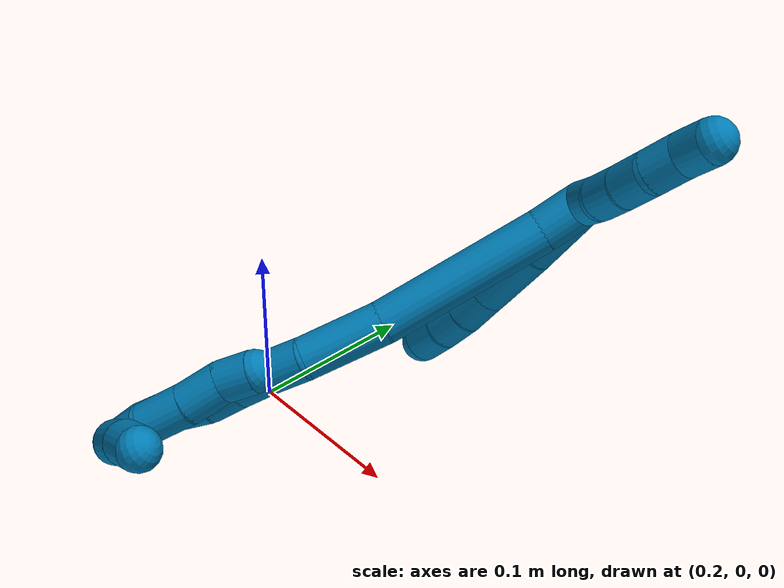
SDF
<sdf version="1.7">
 <world name="default">
  <model name="9">
   <static>0</static>
   <link name="9">
    <collision name="collision-cylinder-e_1_2_8">
     <pose>0.004621 0.003601 -0.020201 -2.96518 0.221525 -1.79804</pose>
     <geometry><cylinder><radius>0.0125</radius><length>0.042067</length></cylinder></geometry>
     <surface>
      <friction><ode><mu>1.16</mu><mu2>1.16</mu2><slip1>0</slip1><slip2>0</slip2></ode></friction>
      <contact><ode><kp>1e+06</kp><kd>1</kd><max_vel>0</max_vel><min_depth>0.001</min_depth></ode></contact>
     </surface>
    </collision>
    <visual name="visual-cylinder-e_1_2_8">
     <pose>0.004621 0.003601 -0.020201 -2.96518 0.221525 -1.79804</pose>
     <geometry><cylinder><radius>0.0125</radius><length>0.042067</length></cylinder></geometry>
     <material><ambient>0 0.490196 0.709804 1</ambient></material>
    </visual>
    <collision name="collision-cylinder-e_2_8_9">
     <pose>0.012714 0.012414 -0.061097 -2.8949 0.161223 -1.15505</pose>
     <geometry><cylinder><radius>0.0125</radius><length>0.043243</length></cylinder></geometry>
     <surface>
      <friction><ode><mu>1.16</mu><mu2>1.16</mu2><slip1>0</slip1><slip2>0</slip2></ode></friction>
      <contact><ode><kp>1e+06</kp><kd>1</kd><max_vel>0</max_vel><min_depth>0.001</min_depth></ode></contact>
     </surface>
    </collision>
    <visual name="visual-cylinder-e_2_8_9">
     <pose>0.012714 0.012414 -0.061097 -2.8949 0.161223 -1.15505</pose>
     <geometry><cylinder><radius>0.0125</radius><length>0.043243</length></cylinder></geometry>
     <material><ambient>0 0.490196 0.709804 1</ambient></material>
    </visual>
    <collision name="collision-cylinder-e_3_9_10">
     <pose>0.018074 0.020065 -0.092342 -2.9143 0.172736 -1.29792</pose>
     <geometry><cylinder><radius>0.0125</radius><length>0.021983</length></cylinder></geometry>
     <surface>
      <friction><ode><mu>1.16</mu><mu2>1.16</mu2><slip1>0</slip1><slip2>0</slip2></ode></friction>
      <contact><ode><kp>1e+06</kp><kd>1</kd><max_vel>0</max_vel><min_depth>0.001</min_depth></ode></contact>
     </surface>
    </collision>
    <visual name="visual-cylinder-e_3_9_10">
     <pose>0.018074 0.020065 -0.092342 -2.9143 0.172736 -1.29792</pose>
     <geometry><cylinder><radius>0.0125</radius><length>0.021983</length></cylinder></geometry>
     <material><ambient>0 0.490196 0.709804 1</ambient></material>
    </visual>
    <collision name="collision-cylinder-e_4_10_11">
     <pose>0.020679 0.025127 -0.113028 -2.88845 0.068282 -0.524445</pose>
     <geometry><cylinder><radius>0.0125</radius><length>0.020989</length></cylinder></geometry>
     <surface>
      <friction><ode><mu>1.16</mu><mu2>1.16</mu2><slip1>0</slip1><slip2>0</slip2></ode></friction>
      <contact><ode><kp>1e+06</kp><kd>1</kd><max_vel>0</max_vel><min_depth>0.001</min_depth></ode></contact>
     </surface>
    </collision>
    <visual name="visual-cylinder-e_4_10_11">
     <pose>0.020679 0.025127 -0.113028 -2.88845 0.068282 -0.524445</pose>
     <geometry><cylinder><radius>0.0125</radius><length>0.020989</length></cylinder></geometry>
     <material><ambient>0 0.490196 0.709804 1</ambient></material>
    </visual>
    <collision name="collision-cylinder-e_5_11_6">
     <pose>0.021361 0.031259 -0.13344 -2.81245 -0.00315 0.018969</pose>
     <geometry><cylinder><radius>0.0125</radius><length>0.021718</length></cylinder></geometry>
     <surface>
      <friction><ode><mu>1.16</mu><mu2>1.16</mu2><slip1>0</slip1><slip2>0</slip2></ode></friction>
      <contact><ode><kp>1e+06</kp><kd>1</kd><max_vel>0</max_vel><min_depth>0.001</min_depth></ode></contact>
     </surface>
    </collision>
    <visual name="visual-cylinder-e_5_11_6">
     <pose>0.021361 0.031259 -0.13344 -2.81245 -0.00315 0.018969</pose>
     <geometry><cylinder><radius>0.0125</radius><length>0.021718</length></cylinder></geometry>
     <material><ambient>0 0.490196 0.709804 1</ambient></material>
    </visual>
    <collision name="collision-cylinder-e_1_2_12">
     <pose>0.002489 -0.005866 0.007707 0.650536 0.251551 0.085233</pose>
     <geometry><cylinder><radius>0.0125</radius><length>0.02</length></cylinder></geometry>
     <surface>
      <friction><ode><mu>1.16</mu><mu2>1.16</mu2><slip1>0</slip1><slip2>0</slip2></ode></friction>
      <contact><ode><kp>1e+06</kp><kd>1</kd><max_vel>0</max_vel><min_depth>0.001</min_depth></ode></contact>
     </surface>
    </collision>
    <visual name="visual-cylinder-e_1_2_12">
     <pose>0.002489 -0.005866 0.007707 0.650536 0.251551 0.085233</pose>
     <geometry><cylinder><radius>0.0125</radius><length>0.02</length></cylinder></geometry>
     <material><ambient>0 0.490196 0.709804 1</ambient></material>
    </visual>
    <collision name="collision-cylinder-e_2_12_13">
     <pose>0.006305 -0.015936 0.02439 0.438164 0.133091 0.029675</pose>
     <geometry><cylinder><radius>0.0125</radius><length>0.02</length></cylinder></geometry>
     <surface>
      <friction><ode><mu>1.16</mu><mu2>1.16</mu2><slip1>0</slip1><slip2>0</slip2></ode></friction>
      <contact><ode><kp>1e+06</kp><kd>1</kd><max_vel>0</max_vel><min_depth>0.001</min_depth></ode></contact>
     </surface>
    </collision>
    <visual name="visual-cylinder-e_2_12_13">
     <pose>0.006305 -0.015936 0.02439 0.438164 0.133091 0.029675</pose>
     <geometry><cylinder><radius>0.0125</radius><length>0.02</length></cylinder></geometry>
     <material><ambient>0 0.490196 0.709804 1</ambient></material>
    </visual>
    <collision name="collision-cylinder-e_3_13_14">
     <pose>0.008471 -0.023511 0.042743 0.344949 0.083948 0.014632</pose>
     <geometry><cylinder><radius>0.0125</radius><length>0.02</length></cylinder></geometry>
     <surface>
      <friction><ode><mu>1.16</mu><mu2>1.16</mu2><slip1>0</slip1><slip2>0</slip2></ode></friction>
      <contact><ode><kp>1e+06</kp><kd>1</kd><max_vel>0</max_vel><min_depth>0.001</min_depth></ode></contact>
     </surface>
    </collision>
    <visual name="visual-cylinder-e_3_13_14">
     <pose>0.008471 -0.023511 0.042743 0.344949 0.083948 0.014632</pose>
     <geometry><cylinder><radius>0.0125</radius><length>0.02</length></cylinder></geometry>
     <material><ambient>0 0.490196 0.709804 1</ambient></material>
    </visual>
    <collision name="collision-cylinder-e_4_14_15">
     <pose>0.009319 -0.027646 0.062091 0.076638 0.001029 3.9e-05</pose>
     <geometry><cylinder><radius>0.0125</radius><length>0.02</length></cylinder></geometry>
     <surface>
      <friction><ode><mu>1.16</mu><mu2>1.16</mu2><slip1>0</slip1><slip2>0</slip2></ode></friction>
      <contact><ode><kp>1e+06</kp><kd>1</kd><max_vel>0</max_vel><min_depth>0.001</min_depth></ode></contact>
     </surface>
    </collision>
    <visual name="visual-cylinder-e_4_14_15">
     <pose>0.009319 -0.027646 0.062091 0.076638 0.001029 3.9e-05</pose>
     <geometry><cylinder><radius>0.0125</radius><length>0.02</length></cylinder></geometry>
     <material><ambient>0 0.490196 0.709804 1</ambient></material>
    </visual>
    <collision name="collision-cylinder-e_5_15_5">
     <pose>0.010635 -0.031784 0.081385 0.346984 0.130928 0.022977</pose>
     <geometry><cylinder><radius>0.0125</radius><length>0.02</length></cylinder></geometry>
     <surface>
      <friction><ode><mu>1.16</mu><mu2>1.16</mu2><slip1>0</slip1><slip2>0</slip2></ode></friction>
      <contact><ode><kp>1e+06</kp><kd>1</kd><max_vel>0</max_vel><min_depth>0.001</min_depth></ode></contact>
     </surface>
    </collision>
    <visual name="visual-cylinder-e_5_15_5">
     <pose>0.010635 -0.031784 0.081385 0.346984 0.130928 0.022977</pose>
     <geometry><cylinder><radius>0.0125</radius><length>0.02</length></cylinder></geometry>
     <material><ambient>0 0.490196 0.709804 1</ambient></material>
    </visual>
    <collision name="collision-cylinder-e_1_2_16">
     <pose>0.002739 -0.004492 -0.011982 2.7829 0.210865 1.05674</pose>
     <geometry><cylinder><radius>0.0125</radius><length>0.026172</length></cylinder></geometry>
     <surface>
      <friction><ode><mu>1.16</mu><mu2>1.16</mu2><slip1>0</slip1><slip2>0</slip2></ode></friction>
      <contact><ode><kp>1e+06</kp><kd>1</kd><max_vel>0</max_vel><min_depth>0.001</min_depth></ode></contact>
     </surface>
    </collision>
    <visual name="visual-cylinder-e_1_2_16">
     <pose>0.002739 -0.004492 -0.011982 2.7829 0.210865 1.05674</pose>
     <geometry><cylinder><radius>0.0125</radius><length>0.026172</length></cylinder></geometry>
     <material><ambient>0 0.490196 0.709804 1</ambient></material>
    </visual>
    <collision name="collision-cylinder-e_2_16_17">
     <pose>0.014209 -0.030509 -0.067683 2.68408 0.177295 0.729334</pose>
     <geometry><cylinder><radius>0.0125</radius><length>0.099015</length></cylinder></geometry>
     <surface>
      <friction><ode><mu>1.16</mu><mu2>1.16</mu2><slip1>0</slip1><slip2>0</slip2></ode></friction>
      <contact><ode><kp>1e+06</kp><kd>1</kd><max_vel>0</max_vel><min_depth>0.001</min_depth></ode></contact>
     </surface>
    </collision>
    <visual name="visual-cylinder-e_2_16_17">
     <pose>0.014209 -0.030509 -0.067683 2.68408 0.177295 0.729334</pose>
     <geometry><cylinder><radius>0.0125</radius><length>0.099015</length></cylinder></geometry>
     <material><ambient>0 0.490196 0.709804 1</ambient></material>
    </visual>
    <collision name="collision-cylinder-e_3_17_18">
     <pose>0.024977 -0.062929 -0.132326 2.66153 0.086083 0.348368</pose>
     <geometry><cylinder><radius>0.0125</radius><length>0.047355</length></cylinder></geometry>
     <surface>
      <friction><ode><mu>1.16</mu><mu2>1.16</mu2><slip1>0</slip1><slip2>0</slip2></ode></friction>
      <contact><ode><kp>1e+06</kp><kd>1</kd><max_vel>0</max_vel><min_depth>0.001</min_depth></ode></contact>
     </surface>
    </collision>
    <visual name="visual-cylinder-e_3_17_18">
     <pose>0.024977 -0.062929 -0.132326 2.66153 0.086083 0.348368</pose>
     <geometry><cylinder><radius>0.0125</radius><length>0.047355</length></cylinder></geometry>
     <material><ambient>0 0.490196 0.709804 1</ambient></material>
    </visual>
    <collision name="collision-cylinder-e_4_18_19">
     <pose>0.026683 -0.076478 -0.164471 2.90934 -0.028553 -0.243578</pose>
     <geometry><cylinder><radius>0.0125</radius><length>0.023071</length></cylinder></geometry>
     <surface>
      <friction><ode><mu>1.16</mu><mu2>1.16</mu2><slip1>0</slip1><slip2>0</slip2></ode></friction>
      <contact><ode><kp>1e+06</kp><kd>1</kd><max_vel>0</max_vel><min_depth>0.001</min_depth></ode></contact>
     </surface>
    </collision>
    <visual name="visual-cylinder-e_4_18_19">
     <pose>0.026683 -0.076478 -0.164471 2.90934 -0.028553 -0.243578</pose>
     <geometry><cylinder><radius>0.0125</radius><length>0.023071</length></cylinder></geometry>
     <material><ambient>0 0.490196 0.709804 1</ambient></material>
    </visual>
    <collision name="collision-cylinder-e_5_19_20">
     <pose>0.02638 -0.080359 -0.185982 3.02293 0.002556 0.043018</pose>
     <geometry><cylinder><radius>0.0125</radius><length>0.020726</length></cylinder></geometry>
     <surface>
      <friction><ode><mu>1.16</mu><mu2>1.16</mu2><slip1>0</slip1><slip2>0</slip2></ode></friction>
      <contact><ode><kp>1e+06</kp><kd>1</kd><max_vel>0</max_vel><min_depth>0.001</min_depth></ode></contact>
     </surface>
    </collision>
    <visual name="visual-cylinder-e_5_19_20">
     <pose>0.02638 -0.080359 -0.185982 3.02293 0.002556 0.043018</pose>
     <geometry><cylinder><radius>0.0125</radius><length>0.020726</length></cylinder></geometry>
     <material><ambient>0 0.490196 0.709804 1</ambient></material>
    </visual>
    <collision name="collision-cylinder-e_6_20_21">
     <pose>0.026834 -0.083345 -0.206906 2.97761 0.039596 0.472893</pose>
     <geometry><cylinder><radius>0.0125</radius><length>0.021574</length></cylinder></geometry>
     <surface>
      <friction><ode><mu>1.16</mu><mu2>1.16</mu2><slip1>0</slip1><slip2>0</slip2></ode></friction>
      <contact><ode><kp>1e+06</kp><kd>1</kd><max_vel>0</max_vel><min_depth>0.001</min_depth></ode></contact>
     </surface>
    </collision>
    <visual name="visual-cylinder-e_6_20_21">
     <pose>0.026834 -0.083345 -0.206906 2.97761 0.039596 0.472893</pose>
     <geometry><cylinder><radius>0.0125</radius><length>0.021574</length></cylinder></geometry>
     <material><ambient>0 0.490196 0.709804 1</ambient></material>
    </visual>
    <collision name="collision-cylinder-e_7_21_22">
     <pose>0.025763 -0.08839 -0.227141 2.81184 -0.146538 -0.830937</pose>
     <geometry><cylinder><radius>0.0125</radius><length>0.020514</length></cylinder></geometry>
     <surface>
      <friction><ode><mu>1.16</mu><mu2>1.16</mu2><slip1>0</slip1><slip2>0</slip2></ode></friction>
      <contact><ode><kp>1e+06</kp><kd>1</kd><max_vel>0</max_vel><min_depth>0.001</min_depth></ode></contact>
     </surface>
    </collision>
    <visual name="visual-cylinder-e_7_21_22">
     <pose>0.025763 -0.08839 -0.227141 2.81184 -0.146538 -0.830937</pose>
     <geometry><cylinder><radius>0.0125</radius><length>0.020514</length></cylinder></geometry>
     <material><ambient>0 0.490196 0.709804 1</ambient></material>
    </visual>
    <collision name="collision-cylinder-e_8_22_23">
     <pose>0.024425 -0.094626 -0.247003 2.86164 0.014978 0.106203</pose>
     <geometry><cylinder><radius>0.0125</radius><length>0.021357</length></cylinder></geometry>
     <surface>
      <friction><ode><mu>1.16</mu><mu2>1.16</mu2><slip1>0</slip1><slip2>0</slip2></ode></friction>
      <contact><ode><kp>1e+06</kp><kd>1</kd><max_vel>0</max_vel><min_depth>0.001</min_depth></ode></contact>
     </surface>
    </collision>
    <visual name="visual-cylinder-e_8_22_23">
     <pose>0.024425 -0.094626 -0.247003 2.86164 0.014978 0.106203</pose>
     <geometry><cylinder><radius>0.0125</radius><length>0.021357</length></cylinder></geometry>
     <material><ambient>0 0.490196 0.709804 1</ambient></material>
    </visual>
    <collision name="collision-cylinder-e_9_23_1">
     <pose>0.027319 -0.101448 -0.266192 2.73243 0.273837 1.17237</pose>
     <geometry><cylinder><radius>0.0125</radius><length>0.020216</length></cylinder></geometry>
     <surface>
      <friction><ode><mu>1.16</mu><mu2>1.16</mu2><slip1>0</slip1><slip2>0</slip2></ode></friction>
      <contact><ode><kp>1e+06</kp><kd>1</kd><max_vel>0</max_vel><min_depth>0.001</min_depth></ode></contact>
     </surface>
    </collision>
    <visual name="visual-cylinder-e_9_23_1">
     <pose>0.027319 -0.101448 -0.266192 2.73243 0.273837 1.17237</pose>
     <geometry><cylinder><radius>0.0125</radius><length>0.020216</length></cylinder></geometry>
     <material><ambient>0 0.490196 0.709804 1</ambient></material>
    </visual>
    <collision name="collision-cylinder-e_1_1_24">
     <pose>0.029017 -0.105698 -0.26175 0.028319 -0.077263 -0.001095</pose>
     <geometry><cylinder><radius>0.0125</radius><length>0.026831</length></cylinder></geometry>
     <surface>
      <friction><ode><mu>1.16</mu><mu2>1.16</mu2><slip1>0</slip1><slip2>0</slip2></ode></friction>
      <contact><ode><kp>1e+06</kp><kd>1</kd><max_vel>0</max_vel><min_depth>0.001</min_depth></ode></contact>
     </surface>
    </collision>
    <visual name="visual-cylinder-e_1_1_24">
     <pose>0.029017 -0.105698 -0.26175 0.028319 -0.077263 -0.001095</pose>
     <geometry><cylinder><radius>0.0125</radius><length>0.026831</length></cylinder></geometry>
     <material><ambient>0 0.490196 0.709804 1</ambient></material>
    </visual>
    <collision name="collision-cylinder-e_2_24_25">
     <pose>0.027166 -0.10238 -0.23514 -0.27229 -0.059222 0.008115</pose>
     <geometry><cylinder><radius>0.0125</radius><length>0.027541</length></cylinder></geometry>
     <surface>
      <friction><ode><mu>1.16</mu><mu2>1.16</mu2><slip1>0</slip1><slip2>0</slip2></ode></friction>
      <contact><ode><kp>1e+06</kp><kd>1</kd><max_vel>0</max_vel><min_depth>0.001</min_depth></ode></contact>
     </surface>
    </collision>
    <visual name="visual-cylinder-e_2_24_25">
     <pose>0.027166 -0.10238 -0.23514 -0.27229 -0.059222 0.008115</pose>
     <geometry><cylinder><radius>0.0125</radius><length>0.027541</length></cylinder></geometry>
     <material><ambient>0 0.490196 0.709804 1</ambient></material>
    </visual>
    <collision name="collision-cylinder-e_3_25_26">
     <pose>0.02443 -0.09511 -0.21003 -0.29242 -0.153725 0.022681</pose>
     <geometry><cylinder><radius>0.0125</radius><length>0.025089</length></cylinder></geometry>
     <surface>
      <friction><ode><mu>1.16</mu><mu2>1.16</mu2><slip1>0</slip1><slip2>0</slip2></ode></friction>
      <contact><ode><kp>1e+06</kp><kd>1</kd><max_vel>0</max_vel><min_depth>0.001</min_depth></ode></contact>
     </surface>
    </collision>
    <visual name="visual-cylinder-e_3_25_26">
     <pose>0.02443 -0.09511 -0.21003 -0.29242 -0.153725 0.022681</pose>
     <geometry><cylinder><radius>0.0125</radius><length>0.025089</length></cylinder></geometry>
     <material><ambient>0 0.490196 0.709804 1</ambient></material>
    </visual>
    <collision name="collision-cylinder-e_4_26_4">
     <pose>0.023433 -0.089289 -0.188181 -0.22148 0.090033 -0.010018</pose>
     <geometry><cylinder><radius>0.0125</radius><length>0.020538</length></cylinder></geometry>
     <surface>
      <friction><ode><mu>1.16</mu><mu2>1.16</mu2><slip1>0</slip1><slip2>0</slip2></ode></friction>
      <contact><ode><kp>1e+06</kp><kd>1</kd><max_vel>0</max_vel><min_depth>0.001</min_depth></ode></contact>
     </surface>
    </collision>
    <visual name="visual-cylinder-e_4_26_4">
     <pose>0.023433 -0.089289 -0.188181 -0.22148 0.090033 -0.010018</pose>
     <geometry><cylinder><radius>0.0125</radius><length>0.020538</length></cylinder></geometry>
     <material><ambient>0 0.490196 0.709804 1</ambient></material>
    </visual>
    <collision name="collision-cylinder-e_1_1_27">
     <pose>0.035419 -0.125949 -0.255117 0.800803 0.184632 0.078331</pose>
     <geometry><cylinder><radius>0.0125</radius><length>0.058465</length></cylinder></geometry>
     <surface>
      <friction><ode><mu>1.16</mu><mu2>1.16</mu2><slip1>0</slip1><slip2>0</slip2></ode></friction>
      <contact><ode><kp>1e+06</kp><kd>1</kd><max_vel>0</max_vel><min_depth>0.001</min_depth></ode></contact>
     </surface>
    </collision>
    <visual name="visual-cylinder-e_1_1_27">
     <pose>0.035419 -0.125949 -0.255117 0.800803 0.184632 0.078331</pose>
     <geometry><cylinder><radius>0.0125</radius><length>0.058465</length></cylinder></geometry>
     <material><ambient>0 0.490196 0.709804 1</ambient></material>
    </visual>
    <collision name="collision-cylinder-e_2_27_28">
     <pose>0.043602 -0.152117 -0.226684 0.581258 0.272327 0.081914</pose>
     <geometry><cylinder><radius>0.0125</radius><length>0.020942</length></cylinder></geometry>
     <surface>
      <friction><ode><mu>1.16</mu><mu2>1.16</mu2><slip1>0</slip1><slip2>0</slip2></ode></friction>
      <contact><ode><kp>1e+06</kp><kd>1</kd><max_vel>0</max_vel><min_depth>0.001</min_depth></ode></contact>
     </surface>
    </collision>
    <visual name="visual-cylinder-e_2_27_28">
     <pose>0.043602 -0.152117 -0.226684 0.581258 0.272327 0.081914</pose>
     <geometry><cylinder><radius>0.0125</radius><length>0.020942</length></cylinder></geometry>
     <material><ambient>0 0.490196 0.709804 1</ambient></material>
    </visual>
    <collision name="collision-cylinder-e_3_28_3">
     <pose>0.050762 -0.162336 -0.210179 0.52536 0.435515 0.118854</pose>
     <geometry><cylinder><radius>0.0125</radius><length>0.020593</length></cylinder></geometry>
     <surface>
      <friction><ode><mu>1.16</mu><mu2>1.16</mu2><slip1>0</slip1><slip2>0</slip2></ode></friction>
      <contact><ode><kp>1e+06</kp><kd>1</kd><max_vel>0</max_vel><min_depth>0.001</min_depth></ode></contact>
     </surface>
    </collision>
    <visual name="visual-cylinder-e_3_28_3">
     <pose>0.050762 -0.162336 -0.210179 0.52536 0.435515 0.118854</pose>
     <geometry><cylinder><radius>0.0125</radius><length>0.020593</length></cylinder></geometry>
     <material><ambient>0 0.490196 0.709804 1</ambient></material>
    </visual>
    <collision name="collision-sphere-3">
     <pose>0.055106 -0.167018 -0.202102 0 -0 0</pose>
     <geometry><sphere><radius>0.0125</radius></sphere></geometry>
     <surface>
      <friction><ode><mu>1.16</mu><mu2>1.16</mu2><slip1>0</slip1><slip2>0</slip2></ode></friction>
      <contact><ode><kp>1e+06</kp><kd>1</kd><max_vel>0</max_vel><min_depth>0.001</min_depth></ode></contact>
     </surface>
    </collision>
    <visual name="visual-sphere-3">
     <pose>0.055106 -0.167018 -0.202102 0 -0 0</pose>
     <geometry><sphere><radius>0.0125</radius></sphere></geometry>
     <material><ambient>0 0.490196 0.709804 1</ambient></material>
    </visual>
    <collision name="collision-sphere-28">
     <pose>0.046418 -0.157654 -0.218255 0 -0 0</pose>
     <geometry><sphere><radius>0.0125</radius></sphere></geometry>
     <surface>
      <friction><ode><mu>1.16</mu><mu2>1.16</mu2><slip1>0</slip1><slip2>0</slip2></ode></friction>
      <contact><ode><kp>1e+06</kp><kd>1</kd><max_vel>0</max_vel><min_depth>0.001</min_depth></ode></contact>
     </surface>
    </collision>
    <visual name="visual-sphere-28">
     <pose>0.046418 -0.157654 -0.218255 0 -0 0</pose>
     <geometry><sphere><radius>0.0125</radius></sphere></geometry>
     <material><ambient>0 0.490196 0.709804 1</ambient></material>
    </visual>
    <collision name="collision-sphere-27">
     <pose>0.040786 -0.146579 -0.235113 0 -0 0</pose>
     <geometry><sphere><radius>0.0125</radius></sphere></geometry>
     <surface>
      <friction><ode><mu>1.16</mu><mu2>1.16</mu2><slip1>0</slip1><slip2>0</slip2></ode></friction>
      <contact><ode><kp>1e+06</kp><kd>1</kd><max_vel>0</max_vel><min_depth>0.001</min_depth></ode></contact>
     </surface>
    </collision>
    <visual name="visual-sphere-27">
     <pose>0.040786 -0.146579 -0.235113 0 -0 0</pose>
     <geometry><sphere><radius>0.0125</radius></sphere></geometry>
     <material><ambient>0 0.490196 0.709804 1</ambient></material>
    </visual>
    <collision name="collision-sphere-4">
     <pose>0.024356 -0.087043 -0.178204 0 -0 0</pose>
     <geometry><sphere><radius>0.0125</radius></sphere></geometry>
     <surface>
      <friction><ode><mu>1.16</mu><mu2>1.16</mu2><slip1>0</slip1><slip2>0</slip2></ode></friction>
      <contact><ode><kp>1e+06</kp><kd>1</kd><max_vel>0</max_vel><min_depth>0.001</min_depth></ode></contact>
     </surface>
    </collision>
    <visual name="visual-sphere-4">
     <pose>0.024356 -0.087043 -0.178204 0 -0 0</pose>
     <geometry><sphere><radius>0.0125</radius></sphere></geometry>
     <material><ambient>0 0.490196 0.709804 1</ambient></material>
    </visual>
    <collision name="collision-sphere-26">
     <pose>0.022509 -0.091536 -0.198159 0 -0 0</pose>
     <geometry><sphere><radius>0.0125</radius></sphere></geometry>
     <surface>
      <friction><ode><mu>1.16</mu><mu2>1.16</mu2><slip1>0</slip1><slip2>0</slip2></ode></friction>
      <contact><ode><kp>1e+06</kp><kd>1</kd><max_vel>0</max_vel><min_depth>0.001</min_depth></ode></contact>
     </surface>
    </collision>
    <visual name="visual-sphere-26">
     <pose>0.022509 -0.091536 -0.198159 0 -0 0</pose>
     <geometry><sphere><radius>0.0125</radius></sphere></geometry>
     <material><ambient>0 0.490196 0.709804 1</ambient></material>
    </visual>
    <collision name="collision-sphere-25">
     <pose>0.026351 -0.098683 -0.2219 0 -0 0</pose>
     <geometry><sphere><radius>0.0125</radius></sphere></geometry>
     <surface>
      <friction><ode><mu>1.16</mu><mu2>1.16</mu2><slip1>0</slip1><slip2>0</slip2></ode></friction>
      <contact><ode><kp>1e+06</kp><kd>1</kd><max_vel>0</max_vel><min_depth>0.001</min_depth></ode></contact>
     </surface>
    </collision>
    <visual name="visual-sphere-25">
     <pose>0.026351 -0.098683 -0.2219 0 -0 0</pose>
     <geometry><sphere><radius>0.0125</radius></sphere></geometry>
     <material><ambient>0 0.490196 0.709804 1</ambient></material>
    </visual>
    <collision name="collision-sphere-24">
     <pose>0.027981 -0.106077 -0.24838 0 -0 0</pose>
     <geometry><sphere><radius>0.0125</radius></sphere></geometry>
     <surface>
      <friction><ode><mu>1.16</mu><mu2>1.16</mu2><slip1>0</slip1><slip2>0</slip2></ode></friction>
      <contact><ode><kp>1e+06</kp><kd>1</kd><max_vel>0</max_vel><min_depth>0.001</min_depth></ode></contact>
     </surface>
    </collision>
    <visual name="visual-sphere-24">
     <pose>0.027981 -0.106077 -0.24838 0 -0 0</pose>
     <geometry><sphere><radius>0.0125</radius></sphere></geometry>
     <material><ambient>0 0.490196 0.709804 1</ambient></material>
    </visual>
    <collision name="collision-sphere-1">
     <pose>0.030052 -0.10532 -0.27512 0 -0 0</pose>
     <geometry><sphere><radius>0.0125</radius></sphere></geometry>
     <surface>
      <friction><ode><mu>1.16</mu><mu2>1.16</mu2><slip1>0</slip1><slip2>0</slip2></ode></friction>
      <contact><ode><kp>1e+06</kp><kd>1</kd><max_vel>0</max_vel><min_depth>0.001</min_depth></ode></contact>
     </surface>
    </collision>
    <visual name="visual-sphere-1">
     <pose>0.030052 -0.10532 -0.27512 0 -0 0</pose>
     <geometry><sphere><radius>0.0125</radius></sphere></geometry>
     <material><ambient>0 0.490196 0.709804 1</ambient></material>
    </visual>
    <collision name="collision-sphere-23">
     <pose>0.024585 -0.097577 -0.257264 0 -0 0</pose>
     <geometry><sphere><radius>0.0125</radius></sphere></geometry>
     <surface>
      <friction><ode><mu>1.16</mu><mu2>1.16</mu2><slip1>0</slip1><slip2>0</slip2></ode></friction>
      <contact><ode><kp>1e+06</kp><kd>1</kd><max_vel>0</max_vel><min_depth>0.001</min_depth></ode></contact>
     </surface>
    </collision>
    <visual name="visual-sphere-23">
     <pose>0.024585 -0.097577 -0.257264 0 -0 0</pose>
     <geometry><sphere><radius>0.0125</radius></sphere></geometry>
     <material><ambient>0 0.490196 0.709804 1</ambient></material>
    </visual>
    <collision name="collision-sphere-22">
     <pose>0.024265 -0.091676 -0.236741 0 -0 0</pose>
     <geometry><sphere><radius>0.0125</radius></sphere></geometry>
     <surface>
      <friction><ode><mu>1.16</mu><mu2>1.16</mu2><slip1>0</slip1><slip2>0</slip2></ode></friction>
      <contact><ode><kp>1e+06</kp><kd>1</kd><max_vel>0</max_vel><min_depth>0.001</min_depth></ode></contact>
     </surface>
    </collision>
    <visual name="visual-sphere-22">
     <pose>0.024265 -0.091676 -0.236741 0 -0 0</pose>
     <geometry><sphere><radius>0.0125</radius></sphere></geometry>
     <material><ambient>0 0.490196 0.709804 1</ambient></material>
    </visual>
    <collision name="collision-sphere-21">
     <pose>0.027261 -0.085105 -0.21754 0 -0 0</pose>
     <geometry><sphere><radius>0.0125</radius></sphere></geometry>
     <surface>
      <friction><ode><mu>1.16</mu><mu2>1.16</mu2><slip1>0</slip1><slip2>0</slip2></ode></friction>
      <contact><ode><kp>1e+06</kp><kd>1</kd><max_vel>0</max_vel><min_depth>0.001</min_depth></ode></contact>
     </surface>
    </collision>
    <visual name="visual-sphere-21">
     <pose>0.027261 -0.085105 -0.21754 0 -0 0</pose>
     <geometry><sphere><radius>0.0125</radius></sphere></geometry>
     <material><ambient>0 0.490196 0.709804 1</ambient></material>
    </visual>
    <collision name="collision-sphere-6">
     <pose>0.021327 0.034769 -0.143716 0 -0 0</pose>
     <geometry><sphere><radius>0.0125</radius></sphere></geometry>
     <surface>
      <friction><ode><mu>1.16</mu><mu2>1.16</mu2><slip1>0</slip1><slip2>0</slip2></ode></friction>
      <contact><ode><kp>1e+06</kp><kd>1</kd><max_vel>0</max_vel><min_depth>0.001</min_depth></ode></contact>
     </surface>
    </collision>
    <visual name="visual-sphere-6">
     <pose>0.021327 0.034769 -0.143716 0 -0 0</pose>
     <geometry><sphere><radius>0.0125</radius></sphere></geometry>
     <material><ambient>0 0.490196 0.709804 1</ambient></material>
    </visual>
    <collision name="collision-sphere-11">
     <pose>0.021395 0.027749 -0.123164 0 -0 0</pose>
     <geometry><sphere><radius>0.0125</radius></sphere></geometry>
     <surface>
      <friction><ode><mu>1.16</mu><mu2>1.16</mu2><slip1>0</slip1><slip2>0</slip2></ode></friction>
      <contact><ode><kp>1e+06</kp><kd>1</kd><max_vel>0</max_vel><min_depth>0.001</min_depth></ode></contact>
     </surface>
    </collision>
    <visual name="visual-sphere-11">
     <pose>0.021395 0.027749 -0.123164 0 -0 0</pose>
     <geometry><sphere><radius>0.0125</radius></sphere></geometry>
     <material><ambient>0 0.490196 0.709804 1</ambient></material>
    </visual>
    <collision name="collision-sphere-10">
     <pose>0.019963 0.022505 -0.102891 0 -0 0</pose>
     <geometry><sphere><radius>0.0125</radius></sphere></geometry>
     <surface>
      <friction><ode><mu>1.16</mu><mu2>1.16</mu2><slip1>0</slip1><slip2>0</slip2></ode></friction>
      <contact><ode><kp>1e+06</kp><kd>1</kd><max_vel>0</max_vel><min_depth>0.001</min_depth></ode></contact>
     </surface>
    </collision>
    <visual name="visual-sphere-10">
     <pose>0.019963 0.022505 -0.102891 0 -0 0</pose>
     <geometry><sphere><radius>0.0125</radius></sphere></geometry>
     <material><ambient>0 0.490196 0.709804 1</ambient></material>
    </visual>
    <collision name="collision-sphere-9">
     <pose>0.016184 0.017625 -0.081792 0 -0 0</pose>
     <geometry><sphere><radius>0.0125</radius></sphere></geometry>
     <surface>
      <friction><ode><mu>1.16</mu><mu2>1.16</mu2><slip1>0</slip1><slip2>0</slip2></ode></friction>
      <contact><ode><kp>1e+06</kp><kd>1</kd><max_vel>0</max_vel><min_depth>0.001</min_depth></ode></contact>
     </surface>
    </collision>
    <visual name="visual-sphere-9">
     <pose>0.016184 0.017625 -0.081792 0 -0 0</pose>
     <geometry><sphere><radius>0.0125</radius></sphere></geometry>
     <material><ambient>0 0.490196 0.709804 1</ambient></material>
    </visual>
    <collision name="collision-sphere-2">
     <geometry><sphere><radius>0.0125</radius></sphere></geometry>
     <surface>
      <friction><ode><mu>1.16</mu><mu2>1.16</mu2><slip1>0</slip1><slip2>0</slip2></ode></friction>
      <contact><ode><kp>1e+06</kp><kd>1</kd><max_vel>0</max_vel><min_depth>0.001</min_depth></ode></contact>
     </surface>
    </collision>
    <visual name="visual-sphere-2">
     <geometry><sphere><radius>0.0125</radius></sphere></geometry>
     <material><ambient>0 0.490196 0.709804 1</ambient></material>
    </visual>
    <collision name="collision-sphere-19">
     <pose>0.026354 -0.079132 -0.175692 0 -0 0</pose>
     <geometry><sphere><radius>0.0125</radius></sphere></geometry>
     <surface>
      <friction><ode><mu>1.16</mu><mu2>1.16</mu2><slip1>0</slip1><slip2>0</slip2></ode></friction>
      <contact><ode><kp>1e+06</kp><kd>1</kd><max_vel>0</max_vel><min_depth>0.001</min_depth></ode></contact>
     </surface>
    </collision>
    <visual name="visual-sphere-19">
     <pose>0.026354 -0.079132 -0.175692 0 -0 0</pose>
     <geometry><sphere><radius>0.0125</radius></sphere></geometry>
     <material><ambient>0 0.490196 0.709804 1</ambient></material>
    </visual>
    <collision name="collision-sphere-8">
     <pose>0.009243 0.007202 -0.040402 0 -0 0</pose>
     <geometry><sphere><radius>0.0125</radius></sphere></geometry>
     <surface>
      <friction><ode><mu>1.16</mu><mu2>1.16</mu2><slip1>0</slip1><slip2>0</slip2></ode></friction>
      <contact><ode><kp>1e+06</kp><kd>1</kd><max_vel>0</max_vel><min_depth>0.001</min_depth></ode></contact>
     </surface>
    </collision>
    <visual name="visual-sphere-8">
     <pose>0.009243 0.007202 -0.040402 0 -0 0</pose>
     <geometry><sphere><radius>0.0125</radius></sphere></geometry>
     <material><ambient>0 0.490196 0.709804 1</ambient></material>
    </visual>
    <collision name="collision-sphere-12">
     <pose>0.004978 -0.011731 0.015414 0 -0 0</pose>
     <geometry><sphere><radius>0.0125</radius></sphere></geometry>
     <surface>
      <friction><ode><mu>1.16</mu><mu2>1.16</mu2><slip1>0</slip1><slip2>0</slip2></ode></friction>
      <contact><ode><kp>1e+06</kp><kd>1</kd><max_vel>0</max_vel><min_depth>0.001</min_depth></ode></contact>
     </surface>
    </collision>
    <visual name="visual-sphere-12">
     <pose>0.004978 -0.011731 0.015414 0 -0 0</pose>
     <geometry><sphere><radius>0.0125</radius></sphere></geometry>
     <material><ambient>0 0.490196 0.709804 1</ambient></material>
    </visual>
    <collision name="collision-sphere-13">
     <pose>0.007632 -0.020142 0.033365 0 -0 0</pose>
     <geometry><sphere><radius>0.0125</radius></sphere></geometry>
     <surface>
      <friction><ode><mu>1.16</mu><mu2>1.16</mu2><slip1>0</slip1><slip2>0</slip2></ode></friction>
      <contact><ode><kp>1e+06</kp><kd>1</kd><max_vel>0</max_vel><min_depth>0.001</min_depth></ode></contact>
     </surface>
    </collision>
    <visual name="visual-sphere-13">
     <pose>0.007632 -0.020142 0.033365 0 -0 0</pose>
     <geometry><sphere><radius>0.0125</radius></sphere></geometry>
     <material><ambient>0 0.490196 0.709804 1</ambient></material>
    </visual>
    <collision name="collision-sphere-14">
     <pose>0.009309 -0.026881 0.05212 0 -0 0</pose>
     <geometry><sphere><radius>0.0125</radius></sphere></geometry>
     <surface>
      <friction><ode><mu>1.16</mu><mu2>1.16</mu2><slip1>0</slip1><slip2>0</slip2></ode></friction>
      <contact><ode><kp>1e+06</kp><kd>1</kd><max_vel>0</max_vel><min_depth>0.001</min_depth></ode></contact>
     </surface>
    </collision>
    <visual name="visual-sphere-14">
     <pose>0.009309 -0.026881 0.05212 0 -0 0</pose>
     <geometry><sphere><radius>0.0125</radius></sphere></geometry>
     <material><ambient>0 0.490196 0.709804 1</ambient></material>
    </visual>
    <collision name="collision-sphere-15">
     <pose>0.00933 -0.028412 0.072062 0 -0 0</pose>
     <geometry><sphere><radius>0.0125</radius></sphere></geometry>
     <surface>
      <friction><ode><mu>1.16</mu><mu2>1.16</mu2><slip1>0</slip1><slip2>0</slip2></ode></friction>
      <contact><ode><kp>1e+06</kp><kd>1</kd><max_vel>0</max_vel><min_depth>0.001</min_depth></ode></contact>
     </surface>
    </collision>
    <visual name="visual-sphere-15">
     <pose>0.00933 -0.028412 0.072062 0 -0 0</pose>
     <geometry><sphere><radius>0.0125</radius></sphere></geometry>
     <material><ambient>0 0.490196 0.709804 1</ambient></material>
    </visual>
    <collision name="collision-sphere-5">
     <pose>0.011941 -0.035155 0.090709 0 -0 0</pose>
     <geometry><sphere><radius>0.0125</radius></sphere></geometry>
     <surface>
      <friction><ode><mu>1.16</mu><mu2>1.16</mu2><slip1>0</slip1><slip2>0</slip2></ode></friction>
      <contact><ode><kp>1e+06</kp><kd>1</kd><max_vel>0</max_vel><min_depth>0.001</min_depth></ode></contact>
     </surface>
    </collision>
    <visual name="visual-sphere-5">
     <pose>0.011941 -0.035155 0.090709 0 -0 0</pose>
     <geometry><sphere><radius>0.0125</radius></sphere></geometry>
     <material><ambient>0 0.490196 0.709804 1</ambient></material>
    </visual>
    <collision name="collision-sphere-16">
     <pose>0.005478 -0.008984 -0.023963 0 -0 0</pose>
     <geometry><sphere><radius>0.0125</radius></sphere></geometry>
     <surface>
      <friction><ode><mu>1.16</mu><mu2>1.16</mu2><slip1>0</slip1><slip2>0</slip2></ode></friction>
      <contact><ode><kp>1e+06</kp><kd>1</kd><max_vel>0</max_vel><min_depth>0.001</min_depth></ode></contact>
     </surface>
    </collision>
    <visual name="visual-sphere-16">
     <pose>0.005478 -0.008984 -0.023963 0 -0 0</pose>
     <geometry><sphere><radius>0.0125</radius></sphere></geometry>
     <material><ambient>0 0.490196 0.709804 1</ambient></material>
    </visual>
    <collision name="collision-sphere-17">
     <pose>0.022941 -0.052035 -0.111402 0 -0 0</pose>
     <geometry><sphere><radius>0.0125</radius></sphere></geometry>
     <surface>
      <friction><ode><mu>1.16</mu><mu2>1.16</mu2><slip1>0</slip1><slip2>0</slip2></ode></friction>
      <contact><ode><kp>1e+06</kp><kd>1</kd><max_vel>0</max_vel><min_depth>0.001</min_depth></ode></contact>
     </surface>
    </collision>
    <visual name="visual-sphere-17">
     <pose>0.022941 -0.052035 -0.111402 0 -0 0</pose>
     <geometry><sphere><radius>0.0125</radius></sphere></geometry>
     <material><ambient>0 0.490196 0.709804 1</ambient></material>
    </visual>
    <collision name="collision-sphere-18">
     <pose>0.027012 -0.073824 -0.153249 0 -0 0</pose>
     <geometry><sphere><radius>0.0125</radius></sphere></geometry>
     <surface>
      <friction><ode><mu>1.16</mu><mu2>1.16</mu2><slip1>0</slip1><slip2>0</slip2></ode></friction>
      <contact><ode><kp>1e+06</kp><kd>1</kd><max_vel>0</max_vel><min_depth>0.001</min_depth></ode></contact>
     </surface>
    </collision>
    <visual name="visual-sphere-18">
     <pose>0.027012 -0.073824 -0.153249 0 -0 0</pose>
     <geometry><sphere><radius>0.0125</radius></sphere></geometry>
     <material><ambient>0 0.490196 0.709804 1</ambient></material>
    </visual>
    <collision name="collision-sphere-20">
     <pose>0.026407 -0.081586 -0.196272 0 -0 0</pose>
     <geometry><sphere><radius>0.0125</radius></sphere></geometry>
     <surface>
      <friction><ode><mu>1.16</mu><mu2>1.16</mu2><slip1>0</slip1><slip2>0</slip2></ode></friction>
      <contact><ode><kp>1e+06</kp><kd>1</kd><max_vel>0</max_vel><min_depth>0.001</min_depth></ode></contact>
     </surface>
    </collision>
    <visual name="visual-sphere-20">
     <pose>0.026407 -0.081586 -0.196272 0 -0 0</pose>
     <geometry><sphere><radius>0.0125</radius></sphere></geometry>
     <material><ambient>0 0.490196 0.709804 1</ambient></material>
    </visual>
    <inertial>
     <pose>0.020586 -0.054345 -0.125014 0 -0 0</pose>
     <mass>0.75</mass>
     <inertia><ixx>0.000178</ixx><ixy>0</ixy><ixz>0</ixz><iyy>-7e-06</iyy><iyz>0</iyz><izz>1.9e-05</izz></inertia>
    </inertial>
   </link>
   <pose>0.332011 0.118194 0.151535 -0.681741 0.633323 -0.320772</pose>
  </model>
 </world>
</sdf>
